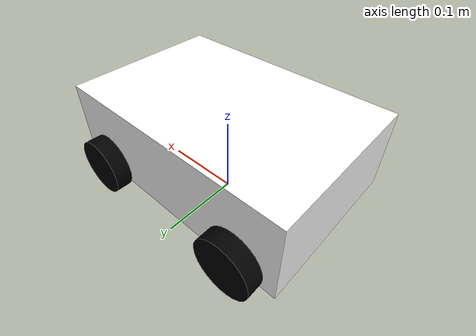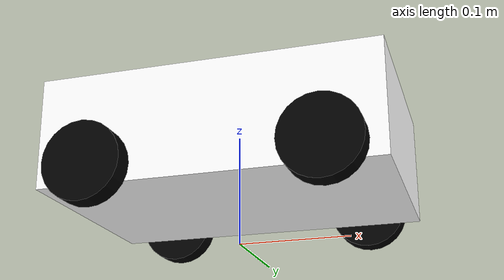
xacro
<?xml version="1.0"?>
<robot xmlns:xacro="http://www.ros.org/wiki/xacro">

    <xacro:property name="wheel_radius" value="0.035" />
    <xacro:property name="wheel_length" value="0.02" />
    <xacro:property name="chassis_width" value="0.2" />
    <xacro:property name="chassis_length" value="0.3" />
    <xacro:property name="chassis_height" value="0.1" />

    <material name="black">
        <color rgba="0 0 0 1"/>
    </material>

    <material name="white">
        <color rgba="1 1 1 1"/>
    </material>

    <material name="red">
        <color rgba="1 0 0 1"/>
    </material>

    <material name="yellow">
        <color rgba="1 1 0 1"/>
    </material>

    <link name="base_link">

    </link>

    <joint name="base_footprint_joint" type="fixed">
        <parent link="base_link"/>
        <child link="base_footprint"/>
        <origin xyz="0 0 0" rpy="0 0 0"/>
    </joint>

    <link name="base_footprint">
    </link>

    <joint name="chassis_joint" type="fixed">
        <origin xyz="0 0 ${wheel_radius+chassis_height/2}" />
        <parent link="base_link"/>
        <child link="chassis"/>
    </joint>

    <link name="chassis">
        <visual>
            <geometry>
            <box size="${chassis_length} ${chassis_width} ${chassis_height}"/>
            </geometry>
            <material name="white"/>
        </visual>
        <collision>
            <geometry>
                <box size="${chassis_length} ${chassis_width} ${chassis_height}"/>
            </geometry>
        </collision>
        <inertial>
            <mass value="2"/>
            <inertia ixx="1.75e-2" iyy="4.17e-3" izz="1.08e-2" ixy="0" ixz="0" iyz="0"/>
        </inertial>
    </link>

    <gazebo reference="chassis">
        <material>Gazebo/White</material>
    </gazebo>

    <link name="left_front_wheel">
        <visual>
            <geometry>
            <cylinder length="${wheel_length}" radius="${wheel_radius}"/>
            </geometry>
            <material name="black"/>
        </visual>
        <collision>
            <geometry>
                <cylinder length="${wheel_length}" radius="${wheel_radius}"/>
            </geometry>
        </collision>
        <inertial>
            <mass value="0.1"/>
            <inertia ixx="2.53e-4" iyy="2.53e-4" izz="5e-4" ixy="0" ixz="0" iyz="0"/>
        </inertial>
    </link>

    <gazebo reference="left_front_wheel">
        <material>Gazebo/Black</material>
    </gazebo>

    <joint name="left_front_wheel_joint" type="continuous">
        <axis xyz="0 0 1"/>
        <parent link="chassis"/>
        <child link="left_front_wheel"/>
        <origin rpy="${-pi/2} 0 0" xyz="0.1 ${(chassis_width+wheel_length)/2} ${-wheel_radius}"/> <!-- ${(chassis_width+wheel_length)/2} -->
    </joint>

    <link name="right_front_wheel">
        <visual>
            <geometry>
                <cylinder length="${wheel_length}" radius="${wheel_radius}"/>
            </geometry>
            <material name="black"/>
        </visual>
        <collision>
            <geometry>
                <cylinder length="${wheel_length}" radius="${wheel_radius}"/>
            </geometry>
        </collision>
        <inertial>
            <mass value="0.1"/>
            <inertia ixx="2.53e-4" iyy="2.53e-4" izz="5e-4" ixy="0" ixz="0" iyz="0"/>
        </inertial>
    </link>

    <gazebo reference="right_front_wheel">
        <material>Gazebo/Black</material>
    </gazebo>

    <joint name="right_front_wheel_joint" type="continuous">
        <axis rpy="0 0 0" xyz="0 0 1"/>
        <parent link="chassis"/>
        <child link="right_front_wheel"/>
        <origin rpy="${-pi/2} 0 0" xyz="0.1 -${(chassis_width+wheel_length)/2} ${-wheel_radius}"/> <!-- ${-(chassis_width+wheel_length)/2} -->
    </joint>

    <link name="left_back_wheel">
        <visual>
            <geometry>
                <cylinder length="${wheel_length}" radius="${wheel_radius}"/>
            </geometry>
            <material name="black"/>
        </visual>
        <collision>
            <geometry>
                <cylinder length="${wheel_length}" radius="${wheel_radius}"/>
            </geometry>
        </collision>
        <inertial>
            <mass value="0.1"/>
            <inertia ixx="2.53e-4" iyy="2.53e-4" izz="5e-4" ixy="0" ixz="0" iyz="0"/>
        </inertial>
    </link>

    <gazebo reference="left_back_wheel">
        <material>Gazebo/Black</material>
        <mu1 value="0.0001"/>
        <mu2 value="0.0001"/>
    </gazebo>

    <joint name="left_back_wheel_joint" type="fixed">
        <parent link="chassis"/>
        <child link="left_back_wheel"/>
        <origin rpy="${-pi/2} 0 0" xyz="-0.1 ${(chassis_width+wheel_length)/2} ${-wheel_radius}"/> <!-- ${(chassis_width+wheel_length)/2} -->
    </joint>

    <link name="right_back_wheel">
        <visual>
            <geometry>
                <cylinder length="${wheel_length}" radius="${wheel_radius}"/>
            </geometry>
            <material name="black"/>
        </visual>
        <collision>
            <geometry>
                <cylinder length="${wheel_length}" radius="${wheel_radius}"/>
            </geometry>
        </collision>
        <inertial>
            <mass value="0.1"/>
            <inertia ixx="2.53e-4" iyy="2.53e-4" izz="5e-4" ixy="0" ixz="0" iyz="0"/>
        </inertial>
    </link>

    <gazebo reference="right_back_wheel">
        <material>Gazebo/Black</material>
        <mu1 value="0.0001"/>
        <mu2 value="0.0001"/>
    </gazebo>

    <joint name="right_back_wheel_joint" type="fixed">
        <parent link="chassis"/>
        <child link="right_back_wheel"/>
        <origin rpy="${-pi/2} 0 0" xyz="-0.1 ${-(chassis_width+wheel_length)/2} ${-wheel_radius}"/> <!-- ${-(chassis_width+wheel_length)/2} -->
    </joint>

</robot>
